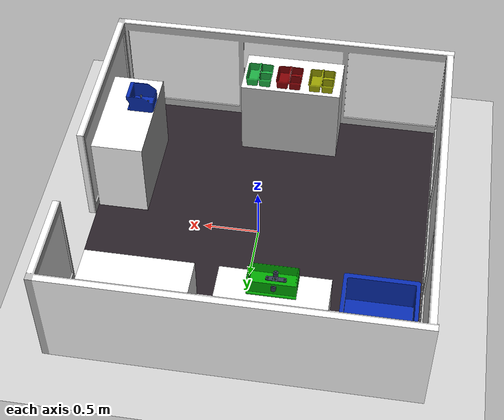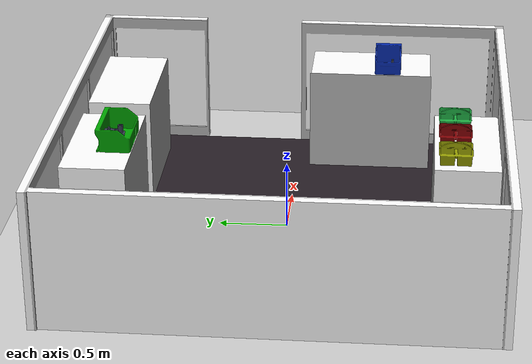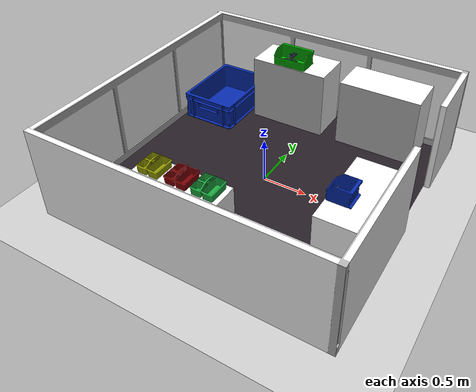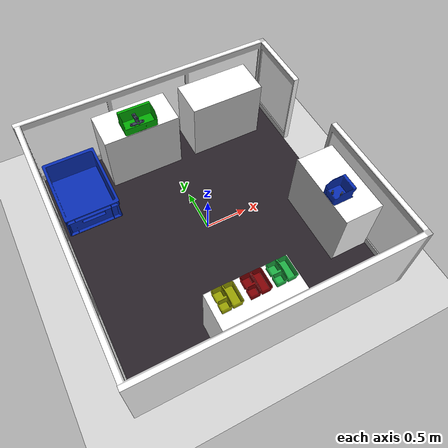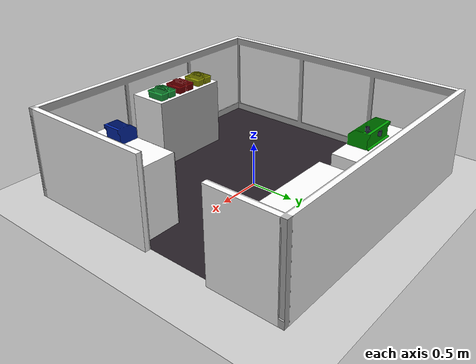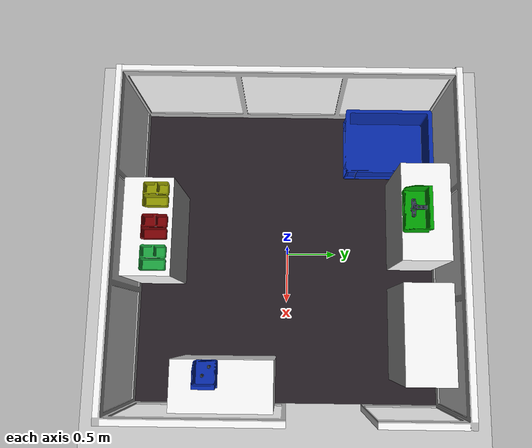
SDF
<?xml version="1.0" ?>
<sdf version="1.4">
  <world name="default">

    <include>
      <uri>model://ground_plane</uri>
      <pose>0 0 -0.005 0 0 0</pose>
    </include>

    <include>
      <uri>model://fetchit_arena</uri>
      <name>fetchit_arena1</name>
      <pose>0 0 0 0 0 0</pose>
    </include>

    <include>
      <uri>model://fetchit_table_em</uri>
      <name>fetchit_table_em1</name>
      <pose>1.28714 -0.565 0.0 0 0 -1.57</pose>
    </include>

    <include>
      <uri>model://fetchit_table_sick</uri>
      <name>fetchit_table_sick1</name>
      <pose>-0.305 1.28179 0.0 0 0 0</pose>
    </include>

    <include>
      <uri>model://fetchit_table_fetch</uri>
      <name>fetchit_table_fetch1</name>
      <pose>-0.135 -1.28849 0.0 0 0 3.1416</pose>
    </include>

    <include>
      <uri>model://fetchit_table_theconstruct</uri>
      <name>fetchit_table_theconstruct1</name>
      <pose>0.815 1.28179 0.0 0 0 0</pose>
    </include>

    <include>
      <uri>model://caddy_green</uri>
      <name>caddy_green1</name>
      <pose>0.168355 -1.20441 0.826729 0 0 0</pose>
    </include>

    <include>
      <uri>model://caddy_red</uri>
      <name>caddy_red1</name>
      <pose>-0.113059 -1.20441 0.826729 0 0 0</pose>
    </include>

    <include>
      <uri>model://caddy_yellow</uri>
      <name>caddy_yellow1</name>
      <pose>-0.414898 -1.20441 0.826729 0 0 0</pose>
    </include>

    <include>
      <uri>model://50mmbin</uri>
      <name>50mmbin</name>
      <pose>1.1789 -0.69649 0.787679 0 0 -1.57</pose>
    </include>

    <include>
      <uri>model://gearbox_bolt_grey</uri>
      <name>gearbox_bolt_grey1</name>
      <pose>1.19481 -0.727808 0.802789 0 0 0</pose>
    </include>

    <include>
      <uri>model://gearbox_bolt_grey</uri>
      <name>gearbox_bolt_grey2</name>
      <pose>1.11789 -0.669909 0.802789 0 0 0</pose>
    </include>

    <include>
      <uri>model://100mmbin</uri>
      <name>100mmbin1</name>
      <pose>-0.301542 1.17623 0.787679 0 0 0</pose>
    </include>

    <include>
      <uri>model://gearbox_bottom_grey</uri>
      <name>gearbox_bottom_grey1</name>
      <pose>-0.319115 1.21719 0.864438 0 0 1.57</pose>
    </include>

    <include>
      <uri>model://gearbox_top_grey</uri>
      <name>gearbox_top_grey1</name>
      <pose>-0.323154 1.15124 0.826531 0 0 0</pose>
    </include>

    <include>
      <uri>model://dropoff_box</uri>
      <name>dropoff_box1</name>
      <pose>-1.15754 1.04702 0 0 0 0</pose>
    </include>

    <light name='user_point_light_0' type='point'>
      <pose frame=''>4.0 4.0 3.5 0 0 0</pose>
      <diffuse>0.7 0.7 0.7 1</diffuse>
      <specular>0.1 0.1 0.1 1</specular>
      <attenuation>
        <range>10</range>
        <constant>1.5</constant>
        <linear>0.01</linear>
        <quadratic>0.001</quadratic>
      </attenuation>
      <cast_shadows>0</cast_shadows>
      <direction>0 0 -1</direction>
    </light>

    <light name='user_point_light_1' type='point'>
      <pose frame=''>-4.0 4.0 3.5 0 0 0</pose>
      <diffuse>0.7 0.7 0.7 1</diffuse>
      <specular>0.1 0.1 0.1 1</specular>
      <attenuation>
        <range>10</range>
        <constant>1.5</constant>
        <linear>0.01</linear>
        <quadratic>0.001</quadratic>
      </attenuation>
      <cast_shadows>0</cast_shadows>
      <direction>0 0 -1</direction>
    </light>

    <light name='user_point_light_2' type='point'>
      <pose frame=''>-4.0 -4.0 3.5 0 0 0</pose>
      <diffuse>0.7 0.7 0.7 1</diffuse>
      <specular>0.1 0.1 0.1 1</specular>
      <attenuation>
        <range>10</range>
        <constant>1.5</constant>
        <linear>0.01</linear>
        <quadratic>0.001</quadratic>
      </attenuation>
      <cast_shadows>0</cast_shadows>
      <direction>0 0 -1</direction>
    </light>

    <light name='user_point_light_3' type='point'>
      <pose frame=''>4.0 -4.0 3.5 0 0 0</pose>
      <diffuse>0.7 0.7 0.7 1</diffuse>
      <specular>0.1 0.1 0.1 1</specular>
      <attenuation>
        <range>10</range>
        <constant>1.5</constant>
        <linear>0.01</linear>
        <quadratic>0.001</quadratic>
      </attenuation>
      <cast_shadows>0</cast_shadows>
      <direction>0 0 -1</direction>
    </light>

  </world>
</sdf>

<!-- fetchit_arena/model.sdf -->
<sdf version='1.4'>
  <model name="fetchit_simple_env">
      <static>1</static>
      <link name='link'>
        <visual name='visual'>
          <geometry>
            <mesh>
              <uri>model://fetchit_arena/meshes/fetchit_arena1.dae</uri>
              <scale>1 1 1</scale>
            </mesh>
          </geometry>
        </visual>
        <collision name='collision'>
          <geometry>
            <mesh>
              <uri>model://fetchit_arena/meshes/fetchit_arena1.dae</uri>
              <scale>1 1 1</scale>
            </mesh>
          </geometry>
          <surface>
            <friction>
              <ode>
                <mu>30.0</mu>
                <mu2>30.0</mu2>
              </ode>
            </friction>
            <contact>
              <ode>
                <soft_cfm>0</soft_cfm>
    	          <soft_erp>0.2</soft_erp>
    	          <kp>1e+13</kp>
    	          <kd>1</kd>
    	          <max_vel>0.01</max_vel>
    	          <min_depth>0</min_depth>
              </ode>
            </contact>
          </surface>
        </collision>
        <velocity_decay>
          <linear>0.000000</linear>
          <angular>0.000000</angular>
        </velocity_decay>
        <self_collide>0</self_collide>
        <kinematic>0</kinematic>
        <gravity>1</gravity>
      </link>
  </model>
</sdf>

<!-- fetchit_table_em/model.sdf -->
<sdf version='1.4'>
  <model name="fetchit_table_em">
      <static>1</static>
      <link name='link'>
        <inertial>
          <mass>0.0592855</mass>
          <inertia>
            <ixx>2.31818050784e-05</ixx>
            <ixy>0.000000</ixy>
            <ixz>0.000000</ixz>
            <iyy>2.31851837098e-05</iyy>
            <iyz>0.000000</iyz>
            <izz>8.88944636856e-06</izz>
          </inertia>
        </inertial>
        <collision name='collision'>
          <geometry>
            <mesh>
              <uri>model://fetchit_table_em/meshes/simple_table.stl</uri>
              <scale>1 1 1</scale>
            </mesh>
          </geometry>
          <surface>
            <friction>
              <ode>
                <mu>30.0</mu>
                <mu2>30.0</mu2>
              </ode>
            </friction>
          </surface>
        </collision>
        <visual name='visual'>
          <geometry>
            <mesh>
              <uri>model://fetchit_table_em/meshes/table_EM.dae</uri>
              <scale>1 1 1</scale>
            </mesh>
          </geometry>
        </visual>
        <velocity_decay>
          <linear>0.000000</linear>
          <angular>0.000000</angular>
        </velocity_decay>
        <self_collide>0</self_collide>
        <kinematic>0</kinematic>
        <gravity>1</gravity>
      </link>
  </model>
</sdf>

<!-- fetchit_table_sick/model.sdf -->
<sdf version='1.4'>
  <model name="fetchit_table_sick">
      <static>1</static>
      <link name='link'>
        <inertial>
          <mass>0.0592855</mass>
          <inertia>
            <ixx>2.31818050784e-05</ixx>
            <ixy>0.000000</ixy>
            <ixz>0.000000</ixz>
            <iyy>2.31851837098e-05</iyy>
            <iyz>0.000000</iyz>
            <izz>8.88944636856e-06</izz>
          </inertia>
        </inertial>
        <collision name='collision'>
          <geometry>
            <mesh>
              <uri>model://fetchit_table_sick/meshes/simple_table.stl</uri>
              <scale>1 1 1</scale>
            </mesh>
          </geometry>
          <surface>
            <friction>
              <ode>
                <mu>30.0</mu>
                <mu2>30.0</mu2>
              </ode>
            </friction>
          </surface>
        </collision>
        <visual name='visual'>
          <geometry>
            <mesh>
              <uri>model://fetchit_table_sick/meshes/table_sick.dae</uri>
              <scale>1 1 1</scale>
            </mesh>
          </geometry>
        </visual>
        <velocity_decay>
          <linear>0.000000</linear>
          <angular>0.000000</angular>
        </velocity_decay>
        <self_collide>0</self_collide>
        <kinematic>0</kinematic>
        <gravity>1</gravity>
      </link>
  </model>
</sdf>

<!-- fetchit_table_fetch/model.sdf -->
<sdf version='1.4'>
  <model name="fetchit_table_fetch">
      <static>1</static>
      <link name='link'>
        <inertial>
          <mass>0.0592855</mass>
          <inertia>
            <ixx>2.31818050784e-05</ixx>
            <ixy>0.000000</ixy>
            <ixz>0.000000</ixz>
            <iyy>2.31851837098e-05</iyy>
            <iyz>0.000000</iyz>
            <izz>8.88944636856e-06</izz>
          </inertia>
        </inertial>
        <collision name='collision'>
          <geometry>
            <mesh>
              <uri>model://fetchit_table_fetch/meshes/simple_table.stl</uri>
              <scale>1 1 1</scale>
            </mesh>
          </geometry>
          <surface>
            <friction>
              <ode>
                <mu>30.0</mu>
                <mu2>30.0</mu2>
              </ode>
            </friction>
          </surface>
        </collision>
        <visual name='visual'>
          <geometry>
            <mesh>
              <uri>model://fetchit_table_fetch/meshes/table_fetch.dae</uri>
              <scale>1 1 1</scale>
            </mesh>
          </geometry>
        </visual>
        <velocity_decay>
          <linear>0.000000</linear>
          <angular>0.000000</angular>
        </velocity_decay>
        <self_collide>0</self_collide>
        <kinematic>0</kinematic>
        <gravity>1</gravity>
      </link>
  </model>
</sdf>

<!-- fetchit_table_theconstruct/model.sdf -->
<sdf version='1.4'>
  <model name="fetchit_table_theconstruct">
      <static>1</static>
      <link name='link'>
        <inertial>
          <mass>0.0592855</mass>
          <inertia>
            <ixx>2.31818050784e-05</ixx>
            <ixy>0.000000</ixy>
            <ixz>0.000000</ixz>
            <iyy>2.31851837098e-05</iyy>
            <iyz>0.000000</iyz>
            <izz>8.88944636856e-06</izz>
          </inertia>
        </inertial>
        <collision name='collision'>
          <geometry>
            <mesh>
              <uri>model://fetchit_table_theconstruct/meshes/simple_table.stl</uri>
              <scale>1 1 1</scale>
            </mesh>
          </geometry>
          <surface>
            <friction>
              <ode>
                <mu>30.0</mu>
                <mu2>30.0</mu2>
              </ode>
            </friction>
          </surface>
        </collision>
        <visual name='visual'>
          <geometry>
            <mesh>
              <uri>model://fetchit_table_theconstruct/meshes/table_theconstruct.dae</uri>
              <scale>1 1 1</scale>
            </mesh>
          </geometry>
        </visual>
        <velocity_decay>
          <linear>0.000000</linear>
          <angular>0.000000</angular>
        </velocity_decay>
        <self_collide>0</self_collide>
        <kinematic>0</kinematic>
        <gravity>1</gravity>
      </link>
  </model>
</sdf>

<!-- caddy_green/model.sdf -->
<sdf version='1.4'>
  <model name="caddy_green">
      <static>0</static>
      <link name='link'>
        <inertial>
          <mass>0.0680389</mass>
          <inertia>
            <ixx>0.00040636575898</ixx>
            <ixy>0.000000</ixy>
            <ixz>0.000000</ixz>
            <iyy>0.00040636575898</iyy>
            <iyz>0.000000</iyz>
            <izz>0.000625974918075</izz>
          </inertia>
        </inertial>
        <collision name='collision'>
          <geometry>
            <mesh>
              <uri>model://caddy_green/meshes/Romanoff_Small_Utility_Caddy_cof.stl</uri>
              <scale>1 1 1</scale>
            </mesh>
          </geometry>
          <surface>
            <friction>
              <ode>
                <mu>1.0</mu>
                <mu2>1.0</mu2>
              </ode>
            </friction>
          </surface>
        </collision>

        <visual name='visual'>
          <geometry>
            <mesh>
              <uri>model://caddy_green/meshes/Romanoff_Small_Utility_Caddy_cof_green.dae</uri>
              <scale>1 1 1</scale>
            </mesh>
          </geometry>
        </visual>
        <velocity_decay>
          <linear>0.000000</linear>
          <angular>0.000000</angular>
        </velocity_decay>
        <self_collide>0</self_collide>
        <kinematic>0</kinematic>
        <gravity>1</gravity>
      </link>
  </model>
</sdf>

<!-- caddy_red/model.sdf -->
<sdf version='1.4'>
  <model name="caddy_red">
      <static>0</static>
      <link name='link'>
        <inertial>
          <mass>0.0680389</mass>
          <inertia>
            <ixx>0.00040636575898</ixx>
            <ixy>0.000000</ixy>
            <ixz>0.000000</ixz>
            <iyy>0.00040636575898</iyy>
            <iyz>0.000000</iyz>
            <izz>0.000625974918075</izz>
          </inertia>
        </inertial>
        <collision name='collision'>
          <geometry>
            <mesh>
              <uri>model://caddy_red/meshes/Romanoff_Small_Utility_Caddy_cof.stl</uri>
              <scale>1 1 1</scale>
            </mesh>
          </geometry>
          <surface>
            <friction>
              <ode>
                <mu>1.0</mu>
                <mu2>1.0</mu2>
              </ode>
            </friction>
          </surface>
        </collision>

        <visual name='visual'>
          <geometry>
            <mesh>
              <uri>model://caddy_red/meshes/Romanoff_Small_Utility_Caddy_cof_red.dae</uri>
              <scale>1 1 1</scale>
            </mesh>
          </geometry>
        </visual>
        <velocity_decay>
          <linear>0.000000</linear>
          <angular>0.000000</angular>
        </velocity_decay>
        <self_collide>0</self_collide>
        <kinematic>0</kinematic>
        <gravity>1</gravity>
      </link>
  </model>
</sdf>

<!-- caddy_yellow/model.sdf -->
<sdf version='1.4'>
  <model name="caddy_yellow">
      <static>0</static>
      <link name='link'>
        <inertial>
          <mass>0.0680389</mass>
          <inertia>
            <ixx>0.00040636575898</ixx>
            <ixy>0.000000</ixy>
            <ixz>0.000000</ixz>
            <iyy>0.00040636575898</iyy>
            <iyz>0.000000</iyz>
            <izz>0.000625974918075</izz>
          </inertia>
        </inertial>
        <collision name='collision'>
          <geometry>
            <mesh>
              <uri>model://caddy_yellow/meshes/Romanoff_Small_Utility_Caddy_cof.stl</uri>
              <scale>1 1 1</scale>
            </mesh>
          </geometry>
          <surface>
            <friction>
              <ode>
                <mu>1.0</mu>
                <mu2>1.0</mu2>
              </ode>
            </friction>
          </surface>
        </collision>

        <visual name='visual'>
          <geometry>
            <mesh>
              <uri>model://caddy_yellow/meshes/Romanoff_Small_Utility_Caddy_cof_yellow.dae</uri>
              <scale>1 1 1</scale>
            </mesh>
          </geometry>
        </visual>
        <velocity_decay>
          <linear>0.000000</linear>
          <angular>0.000000</angular>
        </velocity_decay>
        <self_collide>0</self_collide>
        <kinematic>0</kinematic>
        <gravity>1</gravity>
      </link>
  </model>
</sdf>

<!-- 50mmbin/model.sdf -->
<sdf version='1.4'>
  <model name="50mmbin">
      <static>1</static>
      <link name='link'>
        <inertial>
          <mass>0.0189132</mass>
          <inertia>
            <ixx>3.36060179959e-06</ixx>
            <ixy>0.000000</ixy>
            <ixz>0.000000</ixz>
            <iyy>3.36060179959e-06</iyy>
            <iyz>0.000000</iyz>
            <izz>1.34975977923e-06</izz>
          </inertia>
        </inertial>
        <collision name='collision'>
          <geometry>
            <mesh>
              <uri>model://50mmbin/meshes/50mm.stl</uri>
              <scale>1 1 1</scale>
            </mesh>
          </geometry>
          <surface>
            <friction>
              <ode>
                <mu>30.0</mu>
                <mu2>30.0</mu2>
              </ode>
            </friction>
          </surface>
        </collision>
        <visual name='visual'>
          <geometry>
            <mesh>
              <uri>model://50mmbin/meshes/50mm.dae</uri>
              <scale>1 1 1</scale>
            </mesh>
          </geometry>
        </visual>
        <velocity_decay>
          <linear>0.000000</linear>
          <angular>0.000000</angular>
        </velocity_decay>
        <self_collide>0</self_collide>
        <kinematic>0</kinematic>
        <gravity>1</gravity>
      </link>
  </model>
</sdf>

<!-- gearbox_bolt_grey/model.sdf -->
<sdf version='1.4'>
  <model name="gearbox_bolt_grey">
      <static>0</static>
      <link name='link'>
        <inertial>
          <pose>0 0 0.030633 0 0 0</pose>
          <mass>0.0592855</mass>
          <inertia>
            <ixx>2.2977502034e-05</ixx>
            <ixy>0.000000</ixy>
            <ixz>0.000000</ixz>
            <iyy>2.29905352792e-05</iyy>
            <iyz>0.000000</iyz>
            <izz>8.87979175473e-06</izz>
          </inertia>
        </inertial>
        <collision name='collision'>
          <geometry>
            <mesh>
              <uri>model://gearbox_bolt_grey/meshes/gear_bolt_simple.stl</uri>
              <scale>1 1 1</scale>
            </mesh>
          </geometry>
          <surface>
            <friction>
              <ode>
                <mu>30.0</mu>
                <mu2>30.0</mu2>
              </ode>
            </friction>
          </surface>
        </collision>
        <visual name='visual'>
          <geometry>
            <mesh>
              <uri>model://gearbox_bolt_grey/meshes/screw_grey.dae</uri>
              <scale>1 1 1</scale>
            </mesh>
          </geometry>
        </visual>
        <velocity_decay>
          <linear>0.000000</linear>
          <angular>0.000000</angular>
        </velocity_decay>
        <self_collide>0</self_collide>
        <kinematic>0</kinematic>
        <gravity>1</gravity>
      </link>
  </model>
</sdf>

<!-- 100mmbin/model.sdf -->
<sdf version='1.4'>
  <model name="100mmbin">
      <static>1</static>
      <link name='link'>
        <inertial>
          <mass>0.0189132</mass>
          <inertia>
            <ixx>3.36060179959e-06</ixx>
            <ixy>0.000000</ixy>
            <ixz>0.000000</ixz>
            <iyy>3.36060179959e-06</iyy>
            <iyz>0.000000</iyz>
            <izz>1.34975977923e-06</izz>
          </inertia>
        </inertial>
        <collision name='collision'>
          <geometry>
            <mesh>
              <uri>model://100mmbin/meshes/100mm.stl</uri>
              <scale>1 1 1</scale>
            </mesh>
          </geometry>
          <surface>
            <friction>
              <ode>
                <mu>30.0</mu>
                <mu2>30.0</mu2>
              </ode>
            </friction>
          </surface>
        </collision>
        <visual name='visual'>
          <geometry>
            <mesh>
              <uri>model://100mmbin/meshes/100mm.dae</uri>
              <scale>1 1 1</scale>
            </mesh>
          </geometry>
        </visual>
        <velocity_decay>
          <linear>0.000000</linear>
          <angular>0.000000</angular>
        </velocity_decay>
        <self_collide>0</self_collide>
        <kinematic>0</kinematic>
        <gravity>1</gravity>
      </link>
  </model>
</sdf>

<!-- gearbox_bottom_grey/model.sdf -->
<sdf version='1.4'>
  <model name="gearbox_bottom_grey">
      <static>0</static>
      <link name='link'>
        <inertial>
          <pose>0 0 0.0261852 0 0 0</pose>
          <mass>0.3705614</mass>
          <inertia>
            <ixx>0.000131217258397</ixx>
            <ixy>0.000000</ixy>
            <ixz>0.000000</ixz>
            <iyy>0.000981017941434</iyy>
            <iyz>0.000000</iyz>
            <izz>0.000942847952626</izz>
          </inertia>
        </inertial>
        <collision name='collision'>
          <geometry>
            <mesh>
              <uri>model://gearbox_bottom_grey/meshes/gearbox_bottom_simple.stl</uri>
              <scale>1 1 1</scale>
            </mesh>
          </geometry>
          <surface>
            <friction>
              <ode>
                <mu>30.0</mu>
                <mu2>30.0</mu2>
              </ode>
            </friction>
          </surface>
        </collision>
        <visual name='visual'>
          <geometry>
            <mesh>
              <uri>model://gearbox_bottom_grey/meshes/gearBoxBottom_grey.dae</uri>
              <scale>1 1 1</scale>
            </mesh>
          </geometry>
        </visual>
        <velocity_decay>
          <linear>0.000000</linear>
          <angular>0.000000</angular>
        </velocity_decay>
        <self_collide>0</self_collide>
        <kinematic>0</kinematic>
        <gravity>1</gravity>
      </link>
  </model>
</sdf>

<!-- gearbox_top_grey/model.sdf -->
<sdf version='1.4'>
  <model name="gearbox_top_grey">
      <static>0</static>
      <link name='link'>
        <inertial>
          <pose>0 0 0 0 0 0</pose>
          <mass>0.2282587</mass>
          <inertia>
            <ixx>4.84526132205e-05</ixx>
            <ixy>0.000000</ixy>
            <ixz>0.000000</ixz>
            <iyy>0.000571913204992</iyy>
            <iyz>0.000000</iyz>
            <izz>0.000580776512074</izz>
          </inertia>
        </inertial>
        <collision name='collision'>
          <geometry>
            <mesh>
              <uri>model://gearbox_top_grey/meshes/gearBoxTop_v3.stl</uri>
              <scale>1 1 1</scale>
            </mesh>
          </geometry>
          <surface>
            <friction>
              <ode>
                <mu>30.0</mu>
                <mu2>30.0</mu2>
              </ode>
            </friction>
          </surface>
        </collision>
        <visual name='visual'>
          <geometry>
            <mesh>
              <uri>model://gearbox_top_grey/meshes/gearBoxTop_grey.dae</uri>
              <scale>1 1 1</scale>
            </mesh>
          </geometry>
        </visual>
        <velocity_decay>
          <linear>0.000000</linear>
          <angular>0.000000</angular>
        </velocity_decay>
        <self_collide>0</self_collide>
        <kinematic>0</kinematic>
        <gravity>1</gravity>
      </link>
  </model>
</sdf>

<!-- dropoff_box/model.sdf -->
<sdf version='1.4'>
  <model name="dropoff_box">
      <static>1</static>
      <link name='link'>
        <inertial>
          <mass>1.0</mass>
          <inertia>
            <ixx>0.0755262496948</ixx>
            <ixy>0.000000</ixy>
            <ixz>0.000000</ixz>
            <iyy>0.0441608153271</iyy>
            <iyz>0.000000</iyz>
            <izz>0.1033038684</izz>
          </inertia>
        </inertial>
        <collision name='collision'>
          <geometry>
            <mesh>
              <uri>model://dropoff_box/meshes/box_v1.stl</uri>
              <scale>1 1 1</scale>
            </mesh>
          </geometry>
          <surface>
            <friction>
              <ode>
                <mu>30.0</mu>
                <mu2>30.0</mu2>
              </ode>
            </friction>
            <contact>
              <ode>
                <soft_cfm>0</soft_cfm>
    	          <soft_erp>0.2</soft_erp>
    	          <kp>1e+13</kp>
    	          <kd>1</kd>
    	          <max_vel>0.01</max_vel>
    	          <min_depth>0</min_depth>
              </ode>
            </contact>
          </surface>
        </collision>
        <visual name='visual'>
          <geometry>
            <mesh>
              <uri>model://dropoff_box/meshes/box_v1.dae</uri>
              <scale>1 1 1</scale>
            </mesh>
          </geometry>
        </visual>
        <velocity_decay>
          <linear>0.000000</linear>
          <angular>0.000000</angular>
        </velocity_decay>
        <self_collide>0</self_collide>
        <kinematic>0</kinematic>
        <gravity>1</gravity>
      </link>
  </model>
</sdf>
